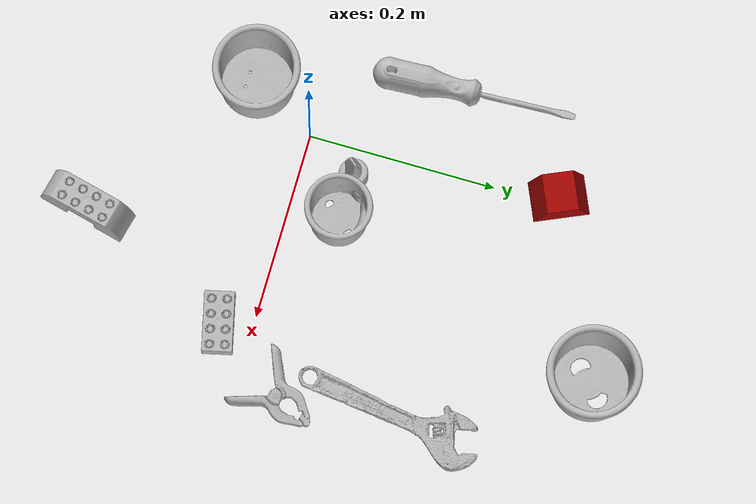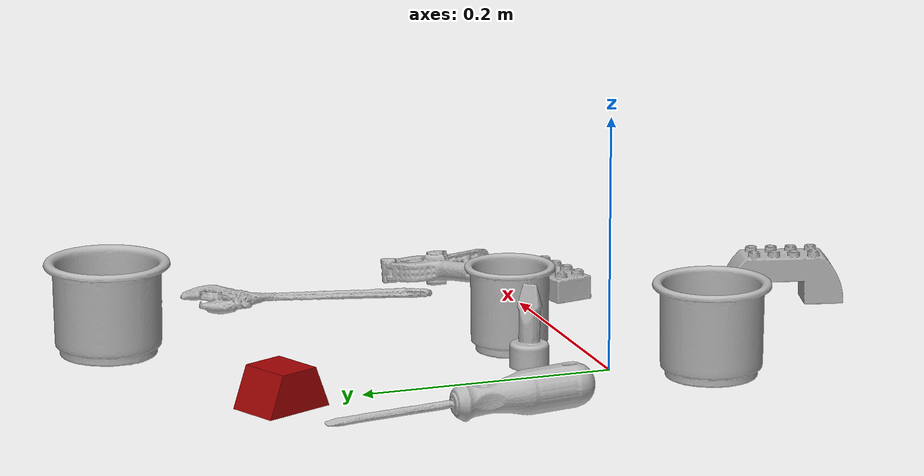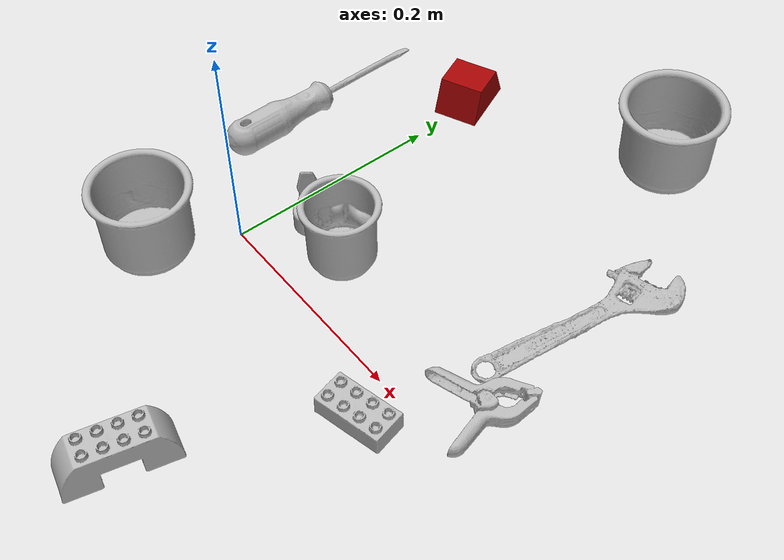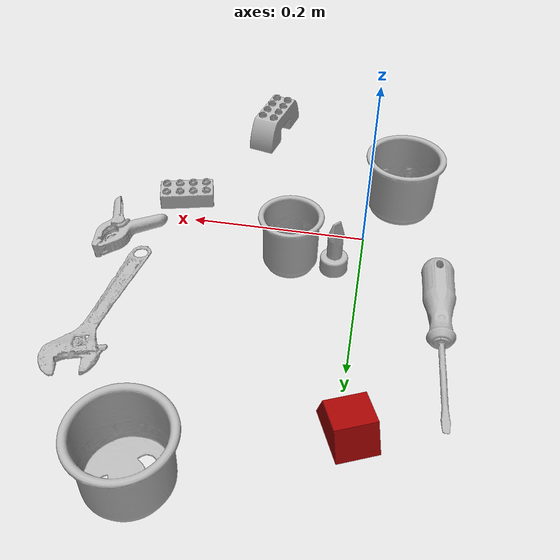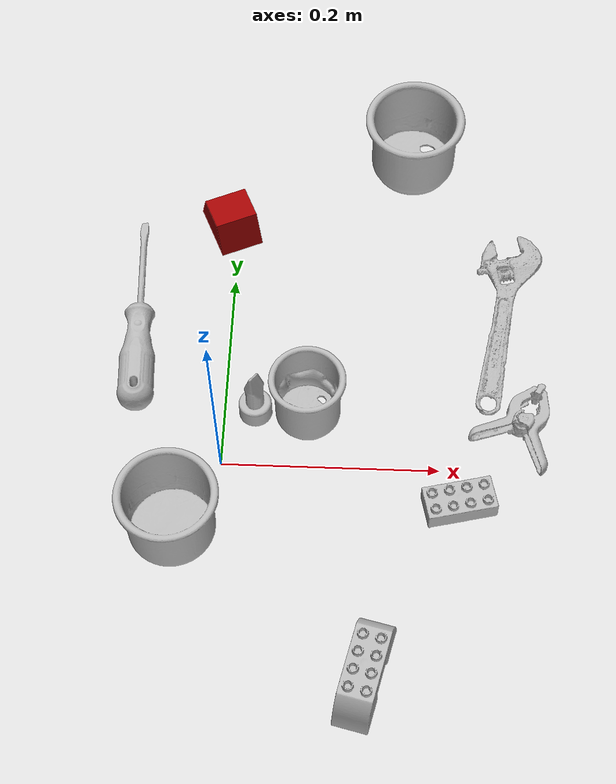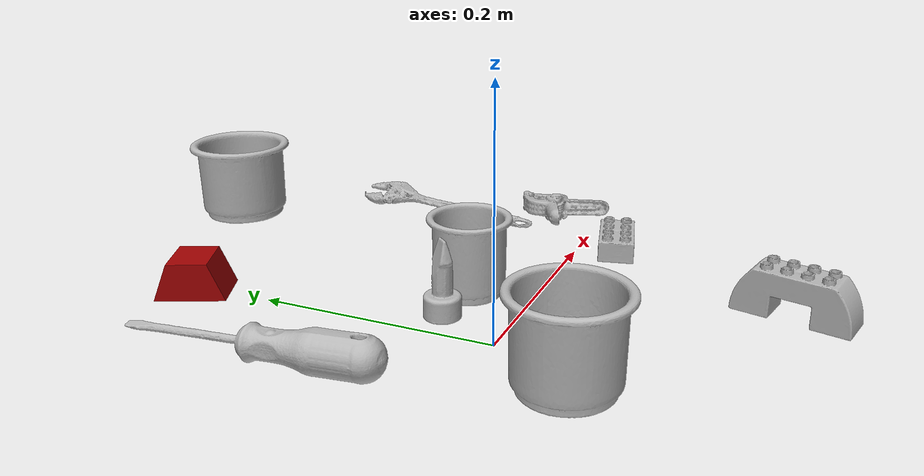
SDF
<sdf version="1.4">
  <world name="default">
    <light name="light1" type="point">
      <pose>0 0 1 0 0 0</pose>
      <diffuse>3 3 3 1</diffuse>
      <specular>3 3 3 1</specular>
    </light>
    <light name="light2" type="point">
      <pose>0 0.5 2 0 0 0</pose>
      <diffuse>1 1 1 1</diffuse>
      <specular>1 1 1 1</specular>
    </light>
    <light name="light3" type="point">
      <pose>0 0.5 2 0 0 0</pose>
      <diffuse>3 3 3 1</diffuse>
      <specular>3 3 3 1</specular>
    </light>
    <scene>
      <ambient>0.7 0.7 0.7</ambient>
    </scene>
    <model name="cup1">
      <link name="link_cup1">
        <collision name="default">
          <geometry>
            <mesh>
              <uri>model://d_cups/collision_meshes/collision.obj</uri>
              <scale>1.0 1.0 1.0</scale>
            </mesh>
          </geometry>
          <surface>
            <friction>
              <ode>
                <mu>0.5</mu>
                <mu2>0.5</mu2>
              </ode>
            </friction>
          <contact>
        <ode>
            <max_vel>0</max_vel>
            <min_depth>0.0001</min_depth>
            <kp>1e8</kp>
        </ode>
    </contact></surface>
        </collision>
        <visual name="default">
          <geometry>
            <mesh>
              <uri>model://d_cups/visual_meshes/visual.dae</uri>
              <scale>1.0 1.0 1.0</scale>
            </mesh>
          </geometry>
        </visual>
        <inertial>
          <mass>0.06783133745193481</mass>
          <pose>0.0008068059105426073 0.0019117397023364902 -0.002266651252284646 0.24012426461604838 -0.24709695541432683 0.5942481546461544</pose>
          <inertia>
            <ixx>5.679078e-05</ixx>
            <iyy>5.662642e-05</iyy>
            <izz>5.1405317e-05</izz>
            <ixy>0</ixy>
            <ixz>0</ixz>
            <iyz>0</iyz>
          </inertia>
        </inertial>
      </link>
      <pose>0.0777512788772583 0.053393684327602386 0.034659016877412796 1.3756512468949746e-06 3.062222704477435e-07 0.25225426536371326</pose>
    </model>
    <model name="cup2">
      <link name="link_cup2">
        <collision name="default">
          <geometry>
            <mesh>
              <uri>model://h_cups/collision_meshes/collision.obj</uri>
              <scale>1.0 1.0 1.0</scale>
            </mesh>
          </geometry>
          <surface>
            <friction>
              <ode>
                <mu>0.5</mu>
                <mu2>0.5</mu2>
              </ode>
            </friction>
          <contact>
        <ode>
            <max_vel>0</max_vel>
            <min_depth>0.0001</min_depth>
            <kp>1e8</kp>
        </ode>
    </contact></surface>
        </collision>
        <visual name="default">
          <geometry>
            <mesh>
              <uri>model://h_cups/visual_meshes/visual.dae</uri>
              <scale>1.0 1.0 1.0</scale>
            </mesh>
          </geometry>
        </visual>
        <inertial>
          <mass>0.0420527309179306</mass>
          <pose>-2.702834171941504e-05 0.0002301869390066713 -0.0018405404407531023 -0.02436231807299455 0.06545237013505961 0.1288477560592675</pose>
          <inertia>
            <ixx>5.430915e-05</ixx>
            <iyy>5.3661057e-05</iyy>
            <izz>5.69554e-05</izz>
            <ixy>0</ixy>
            <ixz>0</ixz>
            <iyz>0</iyz>
          </inertia>
        </inertial>
      </link>
      <pose>-0.038329221308231354 -0.06851093471050262 0.03774028271436691 -0.0005502755117614228 -0.0005716548235217157 1.4583230135433574</pose>
    </model>
    <model name="cup3">
      <link name="link_cup3">
        <collision name="default">
          <geometry>
            <mesh>
              <uri>model://i_cups/collision_meshes/collision.obj</uri>
              <scale>1.0 1.0 1.0</scale>
            </mesh>
          </geometry>
          <surface>
            <friction>
              <ode>
                <mu>0.5</mu>
                <mu2>0.5</mu2>
              </ode>
            </friction>
          <contact>
        <ode>
            <max_vel>0</max_vel>
            <min_depth>0.0001</min_depth>
            <kp>1e8</kp>
        </ode>
    </contact></surface>
        </collision>
        <visual name="default">
          <geometry>
            <mesh>
              <uri>model://i_cups/visual_meshes/visual.dae</uri>
              <scale>1.0 1.0 1.0</scale>
            </mesh>
          </geometry>
        </visual>
        <inertial>
          <mass>0.1172947883605957</mass>
          <pose>0.00011240218736929819 0.00016797319403849542 -0.0008579035638831556 -0.028982974239284674 -0.039873277979934216 -0.3459139003356122</pose>
          <inertia>
            <ixx>0.00016239638</ixx>
            <iyy>0.00016382721</iyy>
            <izz>0.00018150422</izz>
            <ixy>0</ixy>
            <ixz>0</ixz>
            <iyz>0</iyz>
          </inertia>
        </inertial>
      </link>
      <pose>0.17082415521144867 0.35059696435928345 0.037774860858917236 0.0018768382577349341 -0.006401698872745703 -2.701138164261499</pose>
    </model>
    <model name="toy1">
      <link name="link_toy1">
        <collision name="default">
          <geometry>
            <mesh>
              <uri>model://prism/collision_meshes/collision.obj</uri>
              <scale>0.5 0.5 0.5</scale>
            </mesh>
          </geometry>
          <surface>
            <friction>
              <ode>
                <mu>0.5</mu>
                <mu2>0.5</mu2>
              </ode>
            </friction>
          <contact>
        <ode>
            <max_vel>0</max_vel>
            <min_depth>0.0001</min_depth>
            <kp>1e8</kp>
        </ode>
    </contact></surface>
        </collision>
        <visual name="default">
          <geometry>
            <mesh>
              <uri>model://prism/visual_meshes/visual.dae</uri>
              <scale>0.5 0.5 0.5</scale>
            </mesh>
          </geometry>
        </visual>
        <inertial>
          <mass>0.04854338616132736</mass>
          <pose>-4.92679828312248e-05 -2.480786349678965e-07 -0.0016934549203142524 0.0 0.006559181697473799 0.0</pose>
          <inertia>
            <ixx>1.0952453e-05</ixx>
            <iyy>1.3236178e-05</iyy>
            <izz>1.6212734e-05</izz>
            <ixy>0</ixy>
            <ixz>0</ixz>
            <iyz>0</iyz>
          </inertia>
        </inertial>
      </link>
      <pose>-0.008237587288022041 0.26692381501197815 0.016085000708699226 7.944956153434863e-08 -3.957072116675766e-09 1.9904161930860598</pose>
    </model>
    <model name="toy2">
      <link name="link_toy2">
        <collision name="default">
          <geometry>
            <mesh>
              <uri>model://e_toy_airplane/collision_meshes/collision.obj</uri>
              <scale>1.0 1.0 1.0</scale>
            </mesh>
          </geometry>
          <surface>
            <friction>
              <ode>
                <mu>0.5</mu>
                <mu2>0.5</mu2>
              </ode>
            </friction>
          <contact>
        <ode>
            <max_vel>0</max_vel>
            <min_depth>0.0001</min_depth>
            <kp>1e8</kp>
        </ode>
    </contact></surface>
        </collision>
        <visual name="default">
          <geometry>
            <mesh>
              <uri>model://e_toy_airplane/visual_meshes/visual.dae</uri>
              <scale>1.0 1.0 1.0</scale>
            </mesh>
          </geometry>
        </visual>
        <inertial>
          <mass>0.014407381415367126</mass>
          <pose>0.00011740459740394726 -2.2482932763523422e-05 -0.011187206022441387 0.005518488041491648 0.009228285270614433 0.15041380385765837</pose>
          <inertia>
            <ixx>4.397297e-06</ixx>
            <iyy>4.352315e-06</iyy>
            <izz>1.3215607e-06</izz>
            <ixy>0</ixy>
            <ixz>0</ixz>
            <iyz>0</iyz>
          </inertia>
        </inertial>
      </link>
      <pose>0.028580911457538605 0.055235158652067184 0.033212389796972275 1.1138917442631262e-05 -0.000333715138763144 -0.8333912768679791</pose>
    </model>
    <model name="toy3">
      <link name="link_toy3">
        <collision name="default">
          <geometry>
            <mesh>
              <uri>model://e_lego_duplo/collision_meshes/collision.obj</uri>
              <scale>1.0 1.0 1.0</scale>
            </mesh>
          </geometry>
          <surface>
            <friction>
              <ode>
                <mu>0.5</mu>
                <mu2>0.5</mu2>
              </ode>
            </friction>
          <contact>
        <ode>
            <max_vel>0</max_vel>
            <min_depth>0.0001</min_depth>
            <kp>1e8</kp>
        </ode>
    </contact></surface>
        </collision>
        <visual name="default">
          <geometry>
            <mesh>
              <uri>model://e_lego_duplo/visual_meshes/visual.dae</uri>
              <scale>1.0 1.0 1.0</scale>
            </mesh>
          </geometry>
        </visual>
        <inertial>
          <mass>0.059077512472867966</mass>
          <pose>0.00032560460385866463 0.0002348544221604243 0.0019521447829902172 -0.0225678114641467 -6.824730634042773e-05 -0.007625154901652298</pose>
          <inertia>
            <ixx>1.2319611e-05</ixx>
            <iyy>5.0562856e-05</iyy>
            <izz>4.923807e-05</izz>
            <ixy>0</ixy>
            <ixz>0</ixz>
            <iyz>0</iyz>
          </inertia>
        </inertial>
      </link>
      <pose>0.1374780833721161 -0.20039211213588715 0.021774688735604286 0.0023633829781205614 1.305556069316185e-05 1.3400870666468363</pose>
    </model>
    <model name="toy4">
      <link name="link_toy4">
        <collision name="default">
          <geometry>
            <mesh>
              <uri>model://c_lego_duplo/collision_meshes/collision.obj</uri>
              <scale>1.0 1.0 1.0</scale>
            </mesh>
          </geometry>
          <surface>
            <friction>
              <ode>
                <mu>0.5</mu>
                <mu2>0.5</mu2>
              </ode>
            </friction>
          <contact>
        <ode>
            <max_vel>0</max_vel>
            <min_depth>0.0001</min_depth>
            <kp>1e8</kp>
        </ode>
    </contact></surface>
        </collision>
        <visual name="default">
          <geometry>
            <mesh>
              <uri>model://c_lego_duplo/visual_meshes/visual.dae</uri>
              <scale>1.0 1.0 1.0</scale>
            </mesh>
          </geometry>
        </visual>
        <inertial>
          <mass>0.019630447030067444</mass>
          <pose>0.000316459103487432 0.00019464583601802588 0.0010453149443492293 -0.011520787241280632 0.0059000791517924015 0.031100331826339908</pose>
          <inertia>
            <ixx>7.554163e-06</ixx>
            <iyy>2.4130718e-06</iyy>
            <izz>8.827816e-06</izz>
            <ixy>0</ixy>
            <ixz>0</ixz>
            <iyz>0</iyz>
          </inertia>
        </inertial>
      </link>
      <pose>0.21830783784389496 -0.034915730357170105 0.011981504037976265 0.008016015242477994 -0.0020906609141693277 1.7816430254532634</pose>
    </model>
    <model name="hardware1">
      <link name="link_hardware1">
        <collision name="default">
          <geometry>
            <mesh>
              <uri>model://flat_screwdriver/collision_meshes/collision.obj</uri>
              <scale>1.0 1.0 1.0</scale>
            </mesh>
          </geometry>
          <surface>
            <friction>
              <ode>
                <mu>0.5</mu>
                <mu2>0.5</mu2>
              </ode>
            </friction>
          <contact>
        <ode>
            <max_vel>0</max_vel>
            <min_depth>0.0001</min_depth>
            <kp>1e8</kp>
        </ode>
    </contact></surface>
        </collision>
        <visual name="default">
          <geometry>
            <mesh>
              <uri>model://flat_screwdriver/visual_meshes/visual.dae</uri>
              <scale>1.0 1.0 1.0</scale>
            </mesh>
          </geometry>
        </visual>
        <inertial>
          <mass>0.05795019492506981</mass>
          <pose>-0.0489187128841877 -0.0006576800369657576 -0.0006140916375443339 -0.5616548332173045 -0.0032337243504420286 0.0069822829580931615</pose>
          <inertia>
            <ixx>6.846775e-06</ixx>
            <iyy>8.6921296e-05</iyy>
            <izz>8.688106e-05</izz>
            <ixy>0</ixy>
            <ixz>0</ixz>
            <iyz>0</iyz>
          </inertia>
        </inertial>
      </link>
      <pose>-0.08886682987213135 0.15081164240837097 0.015338653698563576 -0.21441021389292986 0.04069446850699695 1.6187821897321033</pose>
    </model>
    <model name="hardware2">
      <link name="link_hardware2">
        <collision name="default">
          <geometry>
            <mesh>
              <uri>model://medium_clamp/collision_meshes/collision.obj</uri>
              <scale>1.0 1.0 1.0</scale>
            </mesh>
          </geometry>
          <surface>
            <friction>
              <ode>
                <mu>0.5</mu>
                <mu2>0.5</mu2>
              </ode>
            </friction>
          <contact>
        <ode>
            <max_vel>0</max_vel>
            <min_depth>0.0001</min_depth>
            <kp>1e8</kp>
        </ode>
    </contact></surface>
        </collision>
        <visual name="default">
          <geometry>
            <mesh>
              <uri>model://medium_clamp/visual_meshes/visual.dae</uri>
              <scale>1.0 1.0 1.0</scale>
            </mesh>
          </geometry>
        </visual>
        <inertial>
          <mass>0.028340468183159828</mass>
          <pose>0.0053909942507743835 0.0003953247796744108 -0.0001222157443407923 -0.001226920261124021 0.0025845025680982987 0.03820769890719856</pose>
          <inertia>
            <ixx>7.720961e-06</ixx>
            <iyy>1.1236185e-05</iyy>
            <izz>1.7307093e-05</izz>
            <ixy>0</ixy>
            <ixz>0</ixz>
            <iyz>0</iyz>
          </inertia>
        </inertial>
      </link>
      <pose>0.2760261297225952 0.04340667277574539 0.013532777316868305 0.07768307103878842 0.08543826535156034 1.1288824822907326</pose>
    </model>
    <model name="hardware3">
      <link name="link_hardware3">
        <collision name="default">
          <geometry>
            <mesh>
              <uri>model://adjustable_wrench/collision_meshes/collision.obj</uri>
              <scale>1.0 1.0 1.0</scale>
            </mesh>
          </geometry>
          <surface>
            <friction>
              <ode>
                <mu>0.5</mu>
                <mu2>0.5</mu2>
              </ode>
            </friction>
          <contact>
        <ode>
            <max_vel>0</max_vel>
            <min_depth>0.0001</min_depth>
            <kp>1e8</kp>
        </ode>
    </contact></surface>
        </collision>
        <visual name="default">
          <geometry>
            <mesh>
              <uri>model://adjustable_wrench/visual_meshes/visual.dae</uri>
              <scale>1.0 1.0 1.0</scale>
            </mesh>
          </geometry>
        </visual>
        <inertial>
          <mass>0.023935195058584213</mass>
          <pose>0.03740980476140976 -0.0028968877159059048 -0.001114922808483243 -0.014473210185193002 0.006656019736435525 -0.010954188403863873</pose>
          <inertia>
            <ixx>4.898683e-06</ixx>
            <iyy>5.733333e-05</iyy>
            <izz>6.197185e-05</izz>
            <ixy>0</ixy>
            <ixz>0</ixz>
            <iyz>0</iyz>
          </inertia>
        </inertial>
      </link>
      <pose>0.25669923424720764 0.16423910856246948 0.006125038489699364 0.0467590997295081 -0.029270576704007747 1.4081663275470577</pose>
    </model>
  <physics type="ode">
      <max_contacts>50</max_contacts>
      <ode>
        <solver>
          <type>quick</type>
          <iters>75</iters>
        </solver>
        <constraints>
          <contact_max_correcting_vel>0</contact_max_correcting_vel>
          <contact_surface_layer>0</contact_surface_layer>
        </constraints>
      </ode>
    </physics></world>
</sdf>
